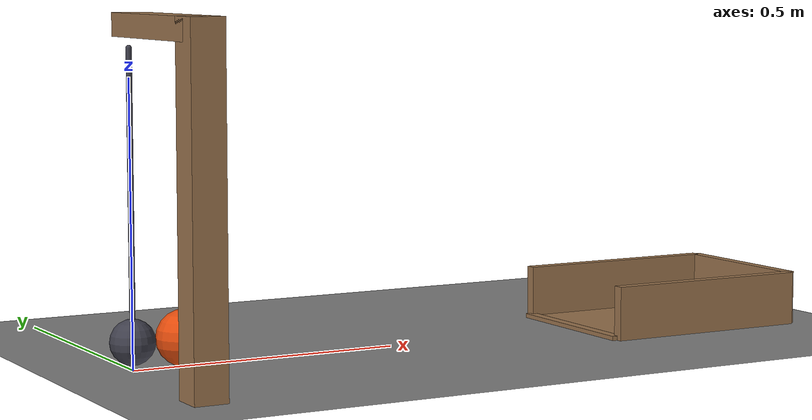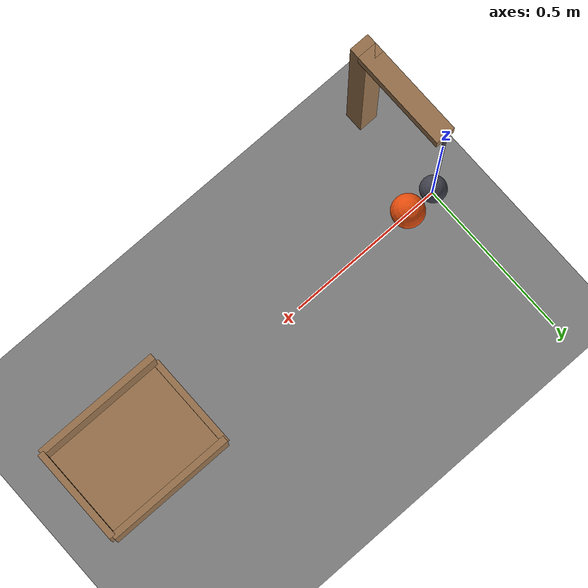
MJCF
<mujoco model="pendulum_strikes_ball_into_cup">
  <compiler angle="radian"/>
  <option timestep="0.002"/>
  <worldbody>
    <geom name="floor" type="plane" size="6 6 0.1" friction="0.8 0.005 0.001"/>
    <body name="pendulum" pos="0 0 0.55">
      <joint name="pendulum_hinge" type="hinge" pos="0 0 0" axis="0 1 0"/>
      <geom name="pendulum" type="sphere" pos="0 0 -0.5" size="0.04" mass="1" friction="0.05 0.0001 0.0001" rgba="0.25 0.25 0.3 1"/>
      <geom name="pendulum rod" type="capsule" size="0.005" fromto="0 0 0 0 0 -0.46" mass="0.5" friction="0.05 0.0001 0.0001" rgba="0.25 0.25 0.3 1"/>
    </body>
    <body name="support beam">
      <geom name="support beam" type="box" pos="0 -0.15 0.59" size="0.03 0.15 0.02" contype="0" conaffinity="0" rgba="0.6 0.45 0.3 1"/>
    </body>
    <body name="support post">
      <geom name="support post" type="box" pos="0 -0.3 0.305" size="0.03 0.03 0.305" contype="0" conaffinity="0" rgba="0.6 0.45 0.3 1"/>
    </body>
    <body name="ball" pos="0.095 0 0.05">
      <freejoint/>
      <geom name="ball" type="sphere" pos="0 0 0" size="0.05" mass="0.1" condim="6" friction="0.05 0.0001 0.0001" rgba="0.9 0.3 0.05 1"/>
    </body>
    <body name="cup">
      <geom name="cup_base" type="box" pos="1.095 0 0.0025" size="0.2 0.15 0.0025" friction="1 0.02 0.06" solref="0.01 1" rgba="0.6 0.45 0.3 1"/>
      <geom name="cup_near_wall" type="box" pos="0.895 0 0.004" size="0.01 0.15 0.004" friction="1 0.02 0.06" solref="0.01 1" rgba="0.6 0.45 0.3 1"/>
      <geom name="cup_far_wall" type="box" pos="1.295 0 0.05" size="0.01 0.15 0.05" friction="1 0.02 0.06" solref="0.01 1" rgba="0.6 0.45 0.3 1"/>
      <geom name="cup_left_wall" type="box" pos="1.095 0.15 0.05" size="0.2 0.01 0.05" friction="1 0.02 0.06" solref="0.01 1" rgba="0.6 0.45 0.3 1"/>
      <geom name="cup_right_wall" type="box" pos="1.095 -0.15 0.05" size="0.2 0.01 0.05" friction="1 0.02 0.06" solref="0.01 1" rgba="0.6 0.45 0.3 1"/>
    </body>
  </worldbody>
  <keyframe>
    <key name="start" qpos="0.785398 0.095 0 0.05 1 0 0 0" qvel="0 0 0 0 0 0 0"/>
  </keyframe>
</mujoco>
